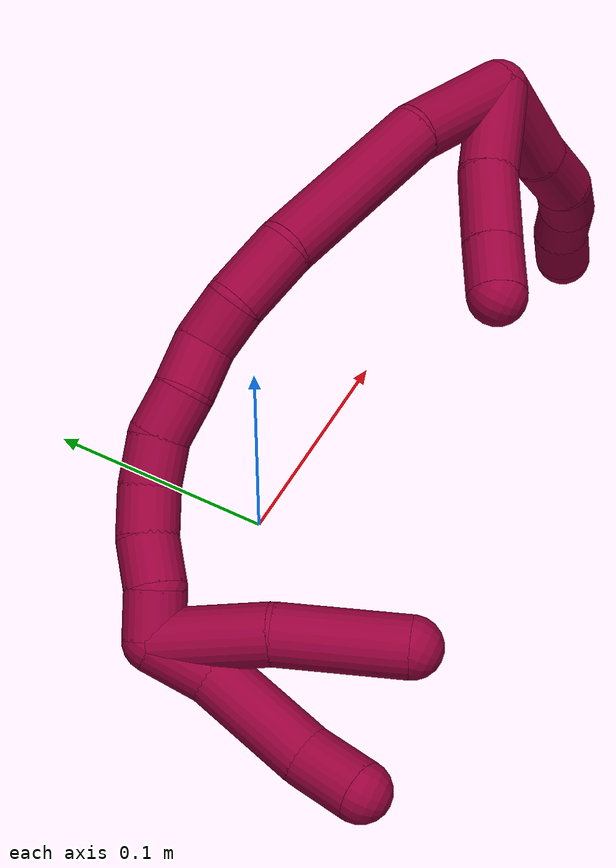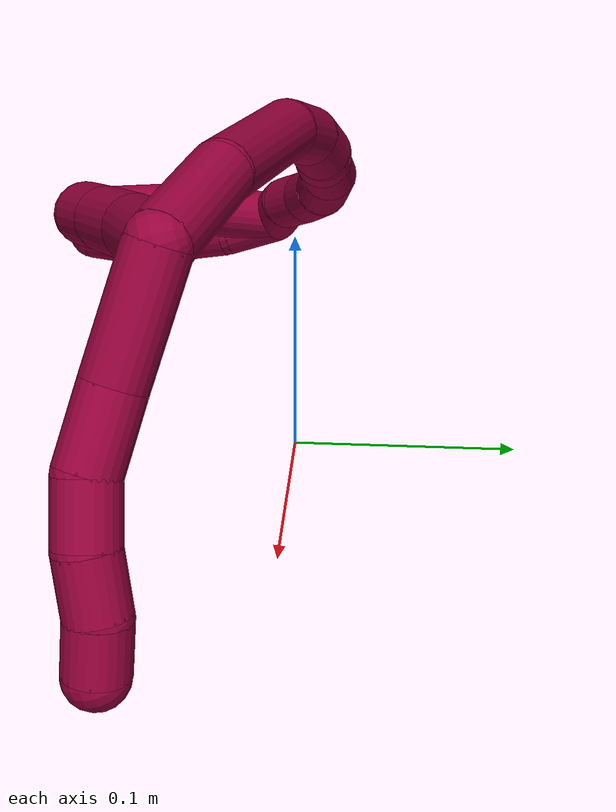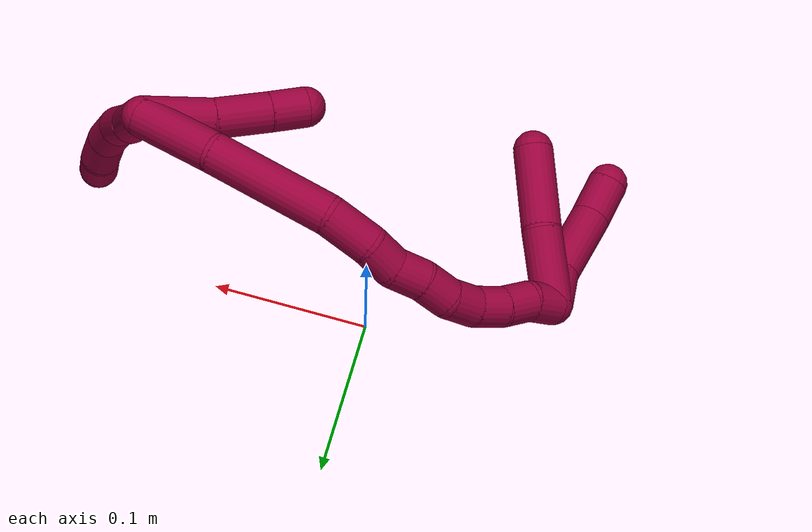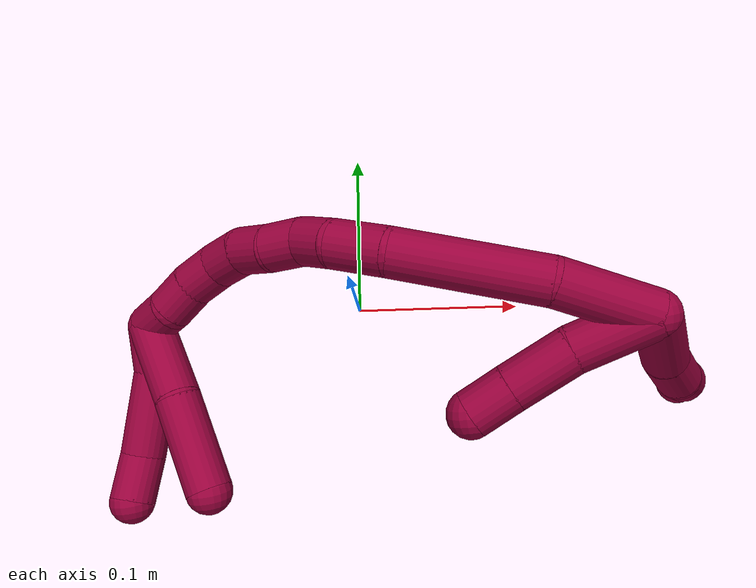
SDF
<sdf version="1.7">
 <world name="default">
  <model name="8">
   <static>0</static>
   <link name="8">
    <collision name="collision-cylinder-e_1_2_8">
     <pose>-0.004784 0.019996 -0.013934 -2.1794 -0.193842 0.368287</pose>
     <geometry><cylinder><radius>0.0125</radius><length>0.049674</length></cylinder></geometry>
     <surface>
      <friction><ode><mu>1.16</mu><mu2>1.16</mu2><slip1>0</slip1><slip2>0</slip2></ode></friction>
      <contact><ode><kp>1e+06</kp><kd>1</kd><max_vel>0</max_vel><min_depth>0.001</min_depth></ode></contact>
     </surface>
    </collision>
    <visual name="visual-cylinder-e_1_2_8">
     <pose>-0.004784 0.019996 -0.013934 -2.1794 -0.193842 0.368287</pose>
     <geometry><cylinder><radius>0.0125</radius><length>0.049674</length></cylinder></geometry>
     <material><ambient>0.584314 0 0.227451 1</ambient></material>
    </visual>
    <collision name="collision-cylinder-e_2_8_9">
     <pose>-0.010461 0.053066 -0.035987 -2.1265 -0.057895 0.104037</pose>
     <geometry><cylinder><radius>0.0125</radius><length>0.030831</length></cylinder></geometry>
     <surface>
      <friction><ode><mu>1.16</mu><mu2>1.16</mu2><slip1>0</slip1><slip2>0</slip2></ode></friction>
      <contact><ode><kp>1e+06</kp><kd>1</kd><max_vel>0</max_vel><min_depth>0.001</min_depth></ode></contact>
     </surface>
    </collision>
    <visual name="visual-cylinder-e_2_8_9">
     <pose>-0.010461 0.053066 -0.035987 -2.1265 -0.057895 0.104037</pose>
     <geometry><cylinder><radius>0.0125</radius><length>0.030831</length></cylinder></geometry>
     <material><ambient>0.584314 0 0.227451 1</ambient></material>
    </visual>
    <collision name="collision-cylinder-e_3_9_10">
     <pose>-0.013219 0.077805 -0.047452 -1.85022 -0.152614 0.202264</pose>
     <geometry><cylinder><radius>0.0125</radius><length>0.024557</length></cylinder></geometry>
     <surface>
      <friction><ode><mu>1.16</mu><mu2>1.16</mu2><slip1>0</slip1><slip2>0</slip2></ode></friction>
      <contact><ode><kp>1e+06</kp><kd>1</kd><max_vel>0</max_vel><min_depth>0.001</min_depth></ode></contact>
     </surface>
    </collision>
    <visual name="visual-cylinder-e_3_9_10">
     <pose>-0.013219 0.077805 -0.047452 -1.85022 -0.152614 0.202264</pose>
     <geometry><cylinder><radius>0.0125</radius><length>0.024557</length></cylinder></geometry>
     <material><ambient>0.584314 0 0.227451 1</ambient></material>
    </visual>
    <collision name="collision-cylinder-e_4_10_11">
     <pose>-0.018724 0.100796 -0.052479 -1.71796 -0.30764 0.355648</pose>
     <geometry><cylinder><radius>0.0125</radius><length>0.024028</length></cylinder></geometry>
     <surface>
      <friction><ode><mu>1.16</mu><mu2>1.16</mu2><slip1>0</slip1><slip2>0</slip2></ode></friction>
      <contact><ode><kp>1e+06</kp><kd>1</kd><max_vel>0</max_vel><min_depth>0.001</min_depth></ode></contact>
     </surface>
    </collision>
    <visual name="visual-cylinder-e_4_10_11">
     <pose>-0.018724 0.100796 -0.052479 -1.71796 -0.30764 0.355648</pose>
     <geometry><cylinder><radius>0.0125</radius><length>0.024028</length></cylinder></geometry>
     <material><ambient>0.584314 0 0.227451 1</ambient></material>
    </visual>
    <collision name="collision-cylinder-e_5_11_6">
     <pose>-0.026198 0.12117 -0.057725 -1.94633 -0.375653 0.544603</pose>
     <geometry><cylinder><radius>0.0125</radius><length>0.02091</length></cylinder></geometry>
     <surface>
      <friction><ode><mu>1.16</mu><mu2>1.16</mu2><slip1>0</slip1><slip2>0</slip2></ode></friction>
      <contact><ode><kp>1e+06</kp><kd>1</kd><max_vel>0</max_vel><min_depth>0.001</min_depth></ode></contact>
     </surface>
    </collision>
    <visual name="visual-cylinder-e_5_11_6">
     <pose>-0.026198 0.12117 -0.057725 -1.94633 -0.375653 0.544603</pose>
     <geometry><cylinder><radius>0.0125</radius><length>0.02091</length></cylinder></geometry>
     <material><ambient>0.584314 0 0.227451 1</ambient></material>
    </visual>
    <collision name="collision-cylinder-e_1_2_12">
     <pose>-0.018583 -0.008623 -0.006159 2.19102 -1.05254 -1.69166</pose>
     <geometry><cylinder><radius>0.0125</radius><length>0.042785</length></cylinder></geometry>
     <surface>
      <friction><ode><mu>1.16</mu><mu2>1.16</mu2><slip1>0</slip1><slip2>0</slip2></ode></friction>
      <contact><ode><kp>1e+06</kp><kd>1</kd><max_vel>0</max_vel><min_depth>0.001</min_depth></ode></contact>
     </surface>
    </collision>
    <visual name="visual-cylinder-e_1_2_12">
     <pose>-0.018583 -0.008623 -0.006159 2.19102 -1.05254 -1.69166</pose>
     <geometry><cylinder><radius>0.0125</radius><length>0.042785</length></cylinder></geometry>
     <material><ambient>0.584314 0 0.227451 1</ambient></material>
    </visual>
    <collision name="collision-cylinder-e_2_12_13">
     <pose>-0.050897 -0.024313 -0.019639 2.37389 -0.933064 -1.7897</pose>
     <geometry><cylinder><radius>0.0125</radius><length>0.034178</length></cylinder></geometry>
     <surface>
      <friction><ode><mu>1.16</mu><mu2>1.16</mu2><slip1>0</slip1><slip2>0</slip2></ode></friction>
      <contact><ode><kp>1e+06</kp><kd>1</kd><max_vel>0</max_vel><min_depth>0.001</min_depth></ode></contact>
     </surface>
    </collision>
    <visual name="visual-cylinder-e_2_12_13">
     <pose>-0.050897 -0.024313 -0.019639 2.37389 -0.933064 -1.7897</pose>
     <geometry><cylinder><radius>0.0125</radius><length>0.034178</length></cylinder></geometry>
     <material><ambient>0.584314 0 0.227451 1</ambient></material>
    </visual>
    <collision name="collision-cylinder-e_3_13_5">
     <pose>-0.073754 -0.036129 -0.032137 2.39915 -0.914743 -1.80325</pose>
     <geometry><cylinder><radius>0.0125</radius><length>0.023037</length></cylinder></geometry>
     <surface>
      <friction><ode><mu>1.16</mu><mu2>1.16</mu2><slip1>0</slip1><slip2>0</slip2></ode></friction>
      <contact><ode><kp>1e+06</kp><kd>1</kd><max_vel>0</max_vel><min_depth>0.001</min_depth></ode></contact>
     </surface>
    </collision>
    <visual name="visual-cylinder-e_3_13_5">
     <pose>-0.073754 -0.036129 -0.032137 2.39915 -0.914743 -1.80325</pose>
     <geometry><cylinder><radius>0.0125</radius><length>0.023037</length></cylinder></geometry>
     <material><ambient>0.584314 0 0.227451 1</ambient></material>
    </visual>
    <collision name="collision-cylinder-e_1_2_14">
     <pose>-0.018882 -0.01412 0.011017 0.908235 -0.811817 -0.413586</pose>
     <geometry><cylinder><radius>0.0125</radius><length>0.052049</length></cylinder></geometry>
     <surface>
      <friction><ode><mu>1.16</mu><mu2>1.16</mu2><slip1>0</slip1><slip2>0</slip2></ode></friction>
      <contact><ode><kp>1e+06</kp><kd>1</kd><max_vel>0</max_vel><min_depth>0.001</min_depth></ode></contact>
     </surface>
    </collision>
    <visual name="visual-cylinder-e_1_2_14">
     <pose>-0.018882 -0.01412 0.011017 0.908235 -0.811817 -0.413586</pose>
     <geometry><cylinder><radius>0.0125</radius><length>0.052049</length></cylinder></geometry>
     <material><ambient>0.584314 0 0.227451 1</ambient></material>
    </visual>
    <collision name="collision-cylinder-e_2_14_15">
     <pose>-0.071766 -0.043129 0.033734 0.904737 -1.06266 -0.556414</pose>
     <geometry><cylinder><radius>0.0125</radius><length>0.07784</length></cylinder></geometry>
     <surface>
      <friction><ode><mu>1.16</mu><mu2>1.16</mu2><slip1>0</slip1><slip2>0</slip2></ode></friction>
      <contact><ode><kp>1e+06</kp><kd>1</kd><max_vel>0</max_vel><min_depth>0.001</min_depth></ode></contact>
     </surface>
    </collision>
    <visual name="visual-cylinder-e_2_14_15">
     <pose>-0.071766 -0.043129 0.033734 0.904737 -1.06266 -0.556414</pose>
     <geometry><cylinder><radius>0.0125</radius><length>0.07784</length></cylinder></geometry>
     <material><ambient>0.584314 0 0.227451 1</ambient></material>
    </visual>
    <collision name="collision-cylinder-e_3_15_16">
     <pose>-0.120024 -0.059861 0.049073 0.468919 -1.29214 -0.356381</pose>
     <geometry><cylinder><radius>0.0125</radius><length>0.029655</length></cylinder></geometry>
     <surface>
      <friction><ode><mu>1.16</mu><mu2>1.16</mu2><slip1>0</slip1><slip2>0</slip2></ode></friction>
      <contact><ode><kp>1e+06</kp><kd>1</kd><max_vel>0</max_vel><min_depth>0.001</min_depth></ode></contact>
     </surface>
    </collision>
    <visual name="visual-cylinder-e_3_15_16">
     <pose>-0.120024 -0.059861 0.049073 0.468919 -1.29214 -0.356381</pose>
     <geometry><cylinder><radius>0.0125</radius><length>0.029655</length></cylinder></geometry>
     <material><ambient>0.584314 0 0.227451 1</ambient></material>
    </visual>
    <collision name="collision-cylinder-e_4_16_17">
     <pose>-0.14406 -0.060249 0.054296 -0.742825 -1.35431 0.606926</pose>
     <geometry><cylinder><radius>0.0125</radius><length>0.020029</length></cylinder></geometry>
     <surface>
      <friction><ode><mu>1.16</mu><mu2>1.16</mu2><slip1>0</slip1><slip2>0</slip2></ode></friction>
      <contact><ode><kp>1e+06</kp><kd>1</kd><max_vel>0</max_vel><min_depth>0.001</min_depth></ode></contact>
     </surface>
    </collision>
    <visual name="visual-cylinder-e_4_16_17">
     <pose>-0.14406 -0.060249 0.054296 -0.742825 -1.35431 0.606926</pose>
     <geometry><cylinder><radius>0.0125</radius><length>0.020029</length></cylinder></geometry>
     <material><ambient>0.584314 0 0.227451 1</ambient></material>
    </visual>
    <collision name="collision-cylinder-e_5_17_18">
     <pose>-0.163877 -0.059929 0.05528 2.05707 -1.44366 -1.9412</pose>
     <geometry><cylinder><radius>0.0125</radius><length>0.020237</length></cylinder></geometry>
     <surface>
      <friction><ode><mu>1.16</mu><mu2>1.16</mu2><slip1>0</slip1><slip2>0</slip2></ode></friction>
      <contact><ode><kp>1e+06</kp><kd>1</kd><max_vel>0</max_vel><min_depth>0.001</min_depth></ode></contact>
     </surface>
    </collision>
    <visual name="visual-cylinder-e_5_17_18">
     <pose>-0.163877 -0.059929 0.05528 2.05707 -1.44366 -1.9412</pose>
     <geometry><cylinder><radius>0.0125</radius><length>0.020237</length></cylinder></geometry>
     <material><ambient>0.584314 0 0.227451 1</ambient></material>
    </visual>
    <collision name="collision-cylinder-e_6_18_19">
     <pose>-0.1839 -0.06031 0.054972 -1.20171 -1.4901 1.12751</pose>
     <geometry><cylinder><radius>0.0125</radius><length>0.020037</length></cylinder></geometry>
     <surface>
      <friction><ode><mu>1.16</mu><mu2>1.16</mu2><slip1>0</slip1><slip2>0</slip2></ode></friction>
      <contact><ode><kp>1e+06</kp><kd>1</kd><max_vel>0</max_vel><min_depth>0.001</min_depth></ode></contact>
     </surface>
    </collision>
    <visual name="visual-cylinder-e_6_18_19">
     <pose>-0.1839 -0.06031 0.054972 -1.20171 -1.4901 1.12751</pose>
     <geometry><cylinder><radius>0.0125</radius><length>0.020037</length></cylinder></geometry>
     <material><ambient>0.584314 0 0.227451 1</ambient></material>
    </visual>
    <collision name="collision-cylinder-e_7_19_20">
     <pose>-0.203532 -0.059064 0.05243 -2.96965 -1.281 2.91135</pose>
     <geometry><cylinder><radius>0.0125</radius><length>0.02013</length></cylinder></geometry>
     <surface>
      <friction><ode><mu>1.16</mu><mu2>1.16</mu2><slip1>0</slip1><slip2>0</slip2></ode></friction>
      <contact><ode><kp>1e+06</kp><kd>1</kd><max_vel>0</max_vel><min_depth>0.001</min_depth></ode></contact>
     </surface>
    </collision>
    <visual name="visual-cylinder-e_7_19_20">
     <pose>-0.203532 -0.059064 0.05243 -2.96965 -1.281 2.91135</pose>
     <geometry><cylinder><radius>0.0125</radius><length>0.02013</length></cylinder></geometry>
     <material><ambient>0.584314 0 0.227451 1</ambient></material>
    </visual>
    <collision name="collision-cylinder-e_8_20_21">
     <pose>-0.222058 -0.06028 0.045329 2.76082 -1.09322 -2.52811</pose>
     <geometry><cylinder><radius>0.0125</radius><length>0.020001</length></cylinder></geometry>
     <surface>
      <friction><ode><mu>1.16</mu><mu2>1.16</mu2><slip1>0</slip1><slip2>0</slip2></ode></friction>
      <contact><ode><kp>1e+06</kp><kd>1</kd><max_vel>0</max_vel><min_depth>0.001</min_depth></ode></contact>
     </surface>
    </collision>
    <visual name="visual-cylinder-e_8_20_21">
     <pose>-0.222058 -0.06028 0.045329 2.76082 -1.09322 -2.52811</pose>
     <geometry><cylinder><radius>0.0125</radius><length>0.020001</length></cylinder></geometry>
     <material><ambient>0.584314 0 0.227451 1</ambient></material>
    </visual>
    <collision name="collision-cylinder-e_9_21_22">
     <pose>-0.238757 -0.06406 0.035169 2.80354 -0.896616 -2.45967</pose>
     <geometry><cylinder><radius>0.0125</radius><length>0.020012</length></cylinder></geometry>
     <surface>
      <friction><ode><mu>1.16</mu><mu2>1.16</mu2><slip1>0</slip1><slip2>0</slip2></ode></friction>
      <contact><ode><kp>1e+06</kp><kd>1</kd><max_vel>0</max_vel><min_depth>0.001</min_depth></ode></contact>
     </surface>
    </collision>
    <visual name="visual-cylinder-e_9_21_22">
     <pose>-0.238757 -0.06406 0.035169 2.80354 -0.896616 -2.45967</pose>
     <geometry><cylinder><radius>0.0125</radius><length>0.020012</length></cylinder></geometry>
     <material><ambient>0.584314 0 0.227451 1</ambient></material>
    </visual>
    <collision name="collision-cylinder-e_10_22_1">
     <pose>-0.255628 -0.065761 0.025035 -3.05444 -1.13131 3.00444</pose>
     <geometry><cylinder><radius>0.0125</radius><length>0.020011</length></cylinder></geometry>
     <surface>
      <friction><ode><mu>1.16</mu><mu2>1.16</mu2><slip1>0</slip1><slip2>0</slip2></ode></friction>
      <contact><ode><kp>1e+06</kp><kd>1</kd><max_vel>0</max_vel><min_depth>0.001</min_depth></ode></contact>
     </surface>
    </collision>
    <visual name="visual-cylinder-e_10_22_1">
     <pose>-0.255628 -0.065761 0.025035 -3.05444 -1.13131 3.00444</pose>
     <geometry><cylinder><radius>0.0125</radius><length>0.020011</length></cylinder></geometry>
     <material><ambient>0.584314 0 0.227451 1</ambient></material>
    </visual>
    <collision name="collision-cylinder-e_1_1_23">
     <pose>-0.265059 -0.065507 0.007953 3.13252 -0.029286 -2.54046</pose>
     <geometry><cylinder><radius>0.0125</radius><length>0.025695</length></cylinder></geometry>
     <surface>
      <friction><ode><mu>1.16</mu><mu2>1.16</mu2><slip1>0</slip1><slip2>0</slip2></ode></friction>
      <contact><ode><kp>1e+06</kp><kd>1</kd><max_vel>0</max_vel><min_depth>0.001</min_depth></ode></contact>
     </surface>
    </collision>
    <visual name="visual-cylinder-e_1_1_23">
     <pose>-0.265059 -0.065507 0.007953 3.13252 -0.029286 -2.54046</pose>
     <geometry><cylinder><radius>0.0125</radius><length>0.025695</length></cylinder></geometry>
     <material><ambient>0.584314 0 0.227451 1</ambient></material>
    </visual>
    <collision name="collision-cylinder-e_2_23_24">
     <pose>-0.270897 -0.070685 -0.027855 2.92468 -0.228203 -1.62193</pose>
     <geometry><cylinder><radius>0.0125</radius><length>0.048285</length></cylinder></geometry>
     <surface>
      <friction><ode><mu>1.16</mu><mu2>1.16</mu2><slip1>0</slip1><slip2>0</slip2></ode></friction>
      <contact><ode><kp>1e+06</kp><kd>1</kd><max_vel>0</max_vel><min_depth>0.001</min_depth></ode></contact>
     </surface>
    </collision>
    <visual name="visual-cylinder-e_2_23_24">
     <pose>-0.270897 -0.070685 -0.027855 2.92468 -0.228203 -1.62193</pose>
     <geometry><cylinder><radius>0.0125</radius><length>0.048285</length></cylinder></geometry>
     <material><ambient>0.584314 0 0.227451 1</ambient></material>
    </visual>
    <collision name="collision-cylinder-e_3_24_4">
     <pose>-0.277304 -0.081348 -0.062524 2.69518 -0.072697 -0.31771</pose>
     <geometry><cylinder><radius>0.0125</radius><length>0.02602</length></cylinder></geometry>
     <surface>
      <friction><ode><mu>1.16</mu><mu2>1.16</mu2><slip1>0</slip1><slip2>0</slip2></ode></friction>
      <contact><ode><kp>1e+06</kp><kd>1</kd><max_vel>0</max_vel><min_depth>0.001</min_depth></ode></contact>
     </surface>
    </collision>
    <visual name="visual-cylinder-e_3_24_4">
     <pose>-0.277304 -0.081348 -0.062524 2.69518 -0.072697 -0.31771</pose>
     <geometry><cylinder><radius>0.0125</radius><length>0.02602</length></cylinder></geometry>
     <material><ambient>0.584314 0 0.227451 1</ambient></material>
    </visual>
    <collision name="collision-cylinder-e_1_1_25">
     <pose>-0.253027 -0.070792 0.001079 2.87417 0.518229 2.20241</pose>
     <geometry><cylinder><radius>0.0125</radius><length>0.047063</length></cylinder></geometry>
     <surface>
      <friction><ode><mu>1.16</mu><mu2>1.16</mu2><slip1>0</slip1><slip2>0</slip2></ode></friction>
      <contact><ode><kp>1e+06</kp><kd>1</kd><max_vel>0</max_vel><min_depth>0.001</min_depth></ode></contact>
     </surface>
    </collision>
    <visual name="visual-cylinder-e_1_1_25">
     <pose>-0.253027 -0.070792 0.001079 2.87417 0.518229 2.20241</pose>
     <geometry><cylinder><radius>0.0125</radius><length>0.047063</length></cylinder></geometry>
     <material><ambient>0.584314 0 0.227451 1</ambient></material>
    </visual>
    <collision name="collision-cylinder-e_2_25_3">
     <pose>-0.231604 -0.079644 -0.042994 3.0009 0.377905 2.43554</pose>
     <geometry><cylinder><radius>0.0125</radius><length>0.052937</length></cylinder></geometry>
     <surface>
      <friction><ode><mu>1.16</mu><mu2>1.16</mu2><slip1>0</slip1><slip2>0</slip2></ode></friction>
      <contact><ode><kp>1e+06</kp><kd>1</kd><max_vel>0</max_vel><min_depth>0.001</min_depth></ode></contact>
     </surface>
    </collision>
    <visual name="visual-cylinder-e_2_25_3">
     <pose>-0.231604 -0.079644 -0.042994 3.0009 0.377905 2.43554</pose>
     <geometry><cylinder><radius>0.0125</radius><length>0.052937</length></cylinder></geometry>
     <material><ambient>0.584314 0 0.227451 1</ambient></material>
    </visual>
    <collision name="collision-sphere-3">
     <pose>-0.221838 -0.083093 -0.067352 0 -0 0</pose>
     <geometry><sphere><radius>0.0125</radius></sphere></geometry>
     <surface>
      <friction><ode><mu>1.16</mu><mu2>1.16</mu2><slip1>0</slip1><slip2>0</slip2></ode></friction>
      <contact><ode><kp>1e+06</kp><kd>1</kd><max_vel>0</max_vel><min_depth>0.001</min_depth></ode></contact>
     </surface>
    </collision>
    <visual name="visual-sphere-3">
     <pose>-0.221838 -0.083093 -0.067352 0 -0 0</pose>
     <geometry><sphere><radius>0.0125</radius></sphere></geometry>
     <material><ambient>0.584314 0 0.227451 1</ambient></material>
    </visual>
    <collision name="collision-sphere-25">
     <pose>-0.241371 -0.076194 -0.018636 0 -0 0</pose>
     <geometry><sphere><radius>0.0125</radius></sphere></geometry>
     <surface>
      <friction><ode><mu>1.16</mu><mu2>1.16</mu2><slip1>0</slip1><slip2>0</slip2></ode></friction>
      <contact><ode><kp>1e+06</kp><kd>1</kd><max_vel>0</max_vel><min_depth>0.001</min_depth></ode></contact>
     </surface>
    </collision>
    <visual name="visual-sphere-25">
     <pose>-0.241371 -0.076194 -0.018636 0 -0 0</pose>
     <geometry><sphere><radius>0.0125</radius></sphere></geometry>
     <material><ambient>0.584314 0 0.227451 1</ambient></material>
    </visual>
    <collision name="collision-sphere-4">
     <pose>-0.278249 -0.08695 -0.074228 0 -0 0</pose>
     <geometry><sphere><radius>0.0125</radius></sphere></geometry>
     <surface>
      <friction><ode><mu>1.16</mu><mu2>1.16</mu2><slip1>0</slip1><slip2>0</slip2></ode></friction>
      <contact><ode><kp>1e+06</kp><kd>1</kd><max_vel>0</max_vel><min_depth>0.001</min_depth></ode></contact>
     </surface>
    </collision>
    <visual name="visual-sphere-4">
     <pose>-0.278249 -0.08695 -0.074228 0 -0 0</pose>
     <geometry><sphere><radius>0.0125</radius></sphere></geometry>
     <material><ambient>0.584314 0 0.227451 1</ambient></material>
    </visual>
    <collision name="collision-sphere-24">
     <pose>-0.276359 -0.075746 -0.05082 0 -0 0</pose>
     <geometry><sphere><radius>0.0125</radius></sphere></geometry>
     <surface>
      <friction><ode><mu>1.16</mu><mu2>1.16</mu2><slip1>0</slip1><slip2>0</slip2></ode></friction>
      <contact><ode><kp>1e+06</kp><kd>1</kd><max_vel>0</max_vel><min_depth>0.001</min_depth></ode></contact>
     </surface>
    </collision>
    <visual name="visual-sphere-24">
     <pose>-0.276359 -0.075746 -0.05082 0 -0 0</pose>
     <geometry><sphere><radius>0.0125</radius></sphere></geometry>
     <material><ambient>0.584314 0 0.227451 1</ambient></material>
    </visual>
    <collision name="collision-sphere-23">
     <pose>-0.265435 -0.065624 -0.004889 0 -0 0</pose>
     <geometry><sphere><radius>0.0125</radius></sphere></geometry>
     <surface>
      <friction><ode><mu>1.16</mu><mu2>1.16</mu2><slip1>0</slip1><slip2>0</slip2></ode></friction>
      <contact><ode><kp>1e+06</kp><kd>1</kd><max_vel>0</max_vel><min_depth>0.001</min_depth></ode></contact>
     </surface>
    </collision>
    <visual name="visual-sphere-23">
     <pose>-0.265435 -0.065624 -0.004889 0 -0 0</pose>
     <geometry><sphere><radius>0.0125</radius></sphere></geometry>
     <material><ambient>0.584314 0 0.227451 1</ambient></material>
    </visual>
    <collision name="collision-sphere-1">
     <pose>-0.264683 -0.065391 0.020794 0 -0 0</pose>
     <geometry><sphere><radius>0.0125</radius></sphere></geometry>
     <surface>
      <friction><ode><mu>1.16</mu><mu2>1.16</mu2><slip1>0</slip1><slip2>0</slip2></ode></friction>
      <contact><ode><kp>1e+06</kp><kd>1</kd><max_vel>0</max_vel><min_depth>0.001</min_depth></ode></contact>
     </surface>
    </collision>
    <visual name="visual-sphere-1">
     <pose>-0.264683 -0.065391 0.020794 0 -0 0</pose>
     <geometry><sphere><radius>0.0125</radius></sphere></geometry>
     <material><ambient>0.584314 0 0.227451 1</ambient></material>
    </visual>
    <collision name="collision-sphere-22">
     <pose>-0.246574 -0.066132 0.029276 0 -0 0</pose>
     <geometry><sphere><radius>0.0125</radius></sphere></geometry>
     <surface>
      <friction><ode><mu>1.16</mu><mu2>1.16</mu2><slip1>0</slip1><slip2>0</slip2></ode></friction>
      <contact><ode><kp>1e+06</kp><kd>1</kd><max_vel>0</max_vel><min_depth>0.001</min_depth></ode></contact>
     </surface>
    </collision>
    <visual name="visual-sphere-22">
     <pose>-0.246574 -0.066132 0.029276 0 -0 0</pose>
     <geometry><sphere><radius>0.0125</radius></sphere></geometry>
     <material><ambient>0.584314 0 0.227451 1</ambient></material>
    </visual>
    <collision name="collision-sphere-21">
     <pose>-0.23094 -0.061989 0.041062 0 -0 0</pose>
     <geometry><sphere><radius>0.0125</radius></sphere></geometry>
     <surface>
      <friction><ode><mu>1.16</mu><mu2>1.16</mu2><slip1>0</slip1><slip2>0</slip2></ode></friction>
      <contact><ode><kp>1e+06</kp><kd>1</kd><max_vel>0</max_vel><min_depth>0.001</min_depth></ode></contact>
     </surface>
    </collision>
    <visual name="visual-sphere-21">
     <pose>-0.23094 -0.061989 0.041062 0 -0 0</pose>
     <geometry><sphere><radius>0.0125</radius></sphere></geometry>
     <material><ambient>0.584314 0 0.227451 1</ambient></material>
    </visual>
    <collision name="collision-sphere-6">
     <pose>-0.030033 0.130218 -0.061292 0 -0 0</pose>
     <geometry><sphere><radius>0.0125</radius></sphere></geometry>
     <surface>
      <friction><ode><mu>1.16</mu><mu2>1.16</mu2><slip1>0</slip1><slip2>0</slip2></ode></friction>
      <contact><ode><kp>1e+06</kp><kd>1</kd><max_vel>0</max_vel><min_depth>0.001</min_depth></ode></contact>
     </surface>
    </collision>
    <visual name="visual-sphere-6">
     <pose>-0.030033 0.130218 -0.061292 0 -0 0</pose>
     <geometry><sphere><radius>0.0125</radius></sphere></geometry>
     <material><ambient>0.584314 0 0.227451 1</ambient></material>
    </visual>
    <collision name="collision-sphere-11">
     <pose>-0.022362 0.112122 -0.054158 0 -0 0</pose>
     <geometry><sphere><radius>0.0125</radius></sphere></geometry>
     <surface>
      <friction><ode><mu>1.16</mu><mu2>1.16</mu2><slip1>0</slip1><slip2>0</slip2></ode></friction>
      <contact><ode><kp>1e+06</kp><kd>1</kd><max_vel>0</max_vel><min_depth>0.001</min_depth></ode></contact>
     </surface>
    </collision>
    <visual name="visual-sphere-11">
     <pose>-0.022362 0.112122 -0.054158 0 -0 0</pose>
     <geometry><sphere><radius>0.0125</radius></sphere></geometry>
     <material><ambient>0.584314 0 0.227451 1</ambient></material>
    </visual>
    <collision name="collision-sphere-10">
     <pose>-0.015086 0.08947 -0.0508 0 -0 0</pose>
     <geometry><sphere><radius>0.0125</radius></sphere></geometry>
     <surface>
      <friction><ode><mu>1.16</mu><mu2>1.16</mu2><slip1>0</slip1><slip2>0</slip2></ode></friction>
      <contact><ode><kp>1e+06</kp><kd>1</kd><max_vel>0</max_vel><min_depth>0.001</min_depth></ode></contact>
     </surface>
    </collision>
    <visual name="visual-sphere-10">
     <pose>-0.015086 0.08947 -0.0508 0 -0 0</pose>
     <geometry><sphere><radius>0.0125</radius></sphere></geometry>
     <material><ambient>0.584314 0 0.227451 1</ambient></material>
    </visual>
    <collision name="collision-sphere-9">
     <pose>-0.011353 0.066139 -0.044105 0 -0 0</pose>
     <geometry><sphere><radius>0.0125</radius></sphere></geometry>
     <surface>
      <friction><ode><mu>1.16</mu><mu2>1.16</mu2><slip1>0</slip1><slip2>0</slip2></ode></friction>
      <contact><ode><kp>1e+06</kp><kd>1</kd><max_vel>0</max_vel><min_depth>0.001</min_depth></ode></contact>
     </surface>
    </collision>
    <visual name="visual-sphere-9">
     <pose>-0.011353 0.066139 -0.044105 0 -0 0</pose>
     <geometry><sphere><radius>0.0125</radius></sphere></geometry>
     <material><ambient>0.584314 0 0.227451 1</ambient></material>
    </visual>
    <collision name="collision-sphere-2">
     <geometry><sphere><radius>0.0125</radius></sphere></geometry>
     <surface>
      <friction><ode><mu>1.16</mu><mu2>1.16</mu2><slip1>0</slip1><slip2>0</slip2></ode></friction>
      <contact><ode><kp>1e+06</kp><kd>1</kd><max_vel>0</max_vel><min_depth>0.001</min_depth></ode></contact>
     </surface>
    </collision>
    <visual name="visual-sphere-2">
     <geometry><sphere><radius>0.0125</radius></sphere></geometry>
     <material><ambient>0.584314 0 0.227451 1</ambient></material>
    </visual>
    <collision name="collision-sphere-19">
     <pose>-0.193886 -0.059556 0.055264 0 -0 0</pose>
     <geometry><sphere><radius>0.0125</radius></sphere></geometry>
     <surface>
      <friction><ode><mu>1.16</mu><mu2>1.16</mu2><slip1>0</slip1><slip2>0</slip2></ode></friction>
      <contact><ode><kp>1e+06</kp><kd>1</kd><max_vel>0</max_vel><min_depth>0.001</min_depth></ode></contact>
     </surface>
    </collision>
    <visual name="visual-sphere-19">
     <pose>-0.193886 -0.059556 0.055264 0 -0 0</pose>
     <geometry><sphere><radius>0.0125</radius></sphere></geometry>
     <material><ambient>0.584314 0 0.227451 1</ambient></material>
    </visual>
    <collision name="collision-sphere-8">
     <pose>-0.009569 0.039992 -0.027868 0 -0 0</pose>
     <geometry><sphere><radius>0.0125</radius></sphere></geometry>
     <surface>
      <friction><ode><mu>1.16</mu><mu2>1.16</mu2><slip1>0</slip1><slip2>0</slip2></ode></friction>
      <contact><ode><kp>1e+06</kp><kd>1</kd><max_vel>0</max_vel><min_depth>0.001</min_depth></ode></contact>
     </surface>
    </collision>
    <visual name="visual-sphere-8">
     <pose>-0.009569 0.039992 -0.027868 0 -0 0</pose>
     <geometry><sphere><radius>0.0125</radius></sphere></geometry>
     <material><ambient>0.584314 0 0.227451 1</ambient></material>
    </visual>
    <collision name="collision-sphere-12">
     <pose>-0.037167 -0.017247 -0.012318 0 -0 0</pose>
     <geometry><sphere><radius>0.0125</radius></sphere></geometry>
     <surface>
      <friction><ode><mu>1.16</mu><mu2>1.16</mu2><slip1>0</slip1><slip2>0</slip2></ode></friction>
      <contact><ode><kp>1e+06</kp><kd>1</kd><max_vel>0</max_vel><min_depth>0.001</min_depth></ode></contact>
     </surface>
    </collision>
    <visual name="visual-sphere-12">
     <pose>-0.037167 -0.017247 -0.012318 0 -0 0</pose>
     <geometry><sphere><radius>0.0125</radius></sphere></geometry>
     <material><ambient>0.584314 0 0.227451 1</ambient></material>
    </visual>
    <collision name="collision-sphere-13">
     <pose>-0.064627 -0.031379 -0.02696 0 -0 0</pose>
     <geometry><sphere><radius>0.0125</radius></sphere></geometry>
     <surface>
      <friction><ode><mu>1.16</mu><mu2>1.16</mu2><slip1>0</slip1><slip2>0</slip2></ode></friction>
      <contact><ode><kp>1e+06</kp><kd>1</kd><max_vel>0</max_vel><min_depth>0.001</min_depth></ode></contact>
     </surface>
    </collision>
    <visual name="visual-sphere-13">
     <pose>-0.064627 -0.031379 -0.02696 0 -0 0</pose>
     <geometry><sphere><radius>0.0125</radius></sphere></geometry>
     <material><ambient>0.584314 0 0.227451 1</ambient></material>
    </visual>
    <collision name="collision-sphere-5">
     <pose>-0.082882 -0.040879 -0.037314 0 -0 0</pose>
     <geometry><sphere><radius>0.0125</radius></sphere></geometry>
     <surface>
      <friction><ode><mu>1.16</mu><mu2>1.16</mu2><slip1>0</slip1><slip2>0</slip2></ode></friction>
      <contact><ode><kp>1e+06</kp><kd>1</kd><max_vel>0</max_vel><min_depth>0.001</min_depth></ode></contact>
     </surface>
    </collision>
    <visual name="visual-sphere-5">
     <pose>-0.082882 -0.040879 -0.037314 0 -0 0</pose>
     <geometry><sphere><radius>0.0125</radius></sphere></geometry>
     <material><ambient>0.584314 0 0.227451 1</ambient></material>
    </visual>
    <collision name="collision-sphere-14">
     <pose>-0.037763 -0.02824 0.022034 0 -0 0</pose>
     <geometry><sphere><radius>0.0125</radius></sphere></geometry>
     <surface>
      <friction><ode><mu>1.16</mu><mu2>1.16</mu2><slip1>0</slip1><slip2>0</slip2></ode></friction>
      <contact><ode><kp>1e+06</kp><kd>1</kd><max_vel>0</max_vel><min_depth>0.001</min_depth></ode></contact>
     </surface>
    </collision>
    <visual name="visual-sphere-14">
     <pose>-0.037763 -0.02824 0.022034 0 -0 0</pose>
     <geometry><sphere><radius>0.0125</radius></sphere></geometry>
     <material><ambient>0.584314 0 0.227451 1</ambient></material>
    </visual>
    <collision name="collision-sphere-15">
     <pose>-0.105768 -0.058018 0.045435 0 -0 0</pose>
     <geometry><sphere><radius>0.0125</radius></sphere></geometry>
     <surface>
      <friction><ode><mu>1.16</mu><mu2>1.16</mu2><slip1>0</slip1><slip2>0</slip2></ode></friction>
      <contact><ode><kp>1e+06</kp><kd>1</kd><max_vel>0</max_vel><min_depth>0.001</min_depth></ode></contact>
     </surface>
    </collision>
    <visual name="visual-sphere-15">
     <pose>-0.105768 -0.058018 0.045435 0 -0 0</pose>
     <geometry><sphere><radius>0.0125</radius></sphere></geometry>
     <material><ambient>0.584314 0 0.227451 1</ambient></material>
    </visual>
    <collision name="collision-sphere-16">
     <pose>-0.134279 -0.061704 0.052711 0 -0 0</pose>
     <geometry><sphere><radius>0.0125</radius></sphere></geometry>
     <surface>
      <friction><ode><mu>1.16</mu><mu2>1.16</mu2><slip1>0</slip1><slip2>0</slip2></ode></friction>
      <contact><ode><kp>1e+06</kp><kd>1</kd><max_vel>0</max_vel><min_depth>0.001</min_depth></ode></contact>
     </surface>
    </collision>
    <visual name="visual-sphere-16">
     <pose>-0.134279 -0.061704 0.052711 0 -0 0</pose>
     <geometry><sphere><radius>0.0125</radius></sphere></geometry>
     <material><ambient>0.584314 0 0.227451 1</ambient></material>
    </visual>
    <collision name="collision-sphere-17">
     <pose>-0.153841 -0.058794 0.05588 0 -0 0</pose>
     <geometry><sphere><radius>0.0125</radius></sphere></geometry>
     <surface>
      <friction><ode><mu>1.16</mu><mu2>1.16</mu2><slip1>0</slip1><slip2>0</slip2></ode></friction>
      <contact><ode><kp>1e+06</kp><kd>1</kd><max_vel>0</max_vel><min_depth>0.001</min_depth></ode></contact>
     </surface>
    </collision>
    <visual name="visual-sphere-17">
     <pose>-0.153841 -0.058794 0.05588 0 -0 0</pose>
     <geometry><sphere><radius>0.0125</radius></sphere></geometry>
     <material><ambient>0.584314 0 0.227451 1</ambient></material>
    </visual>
    <collision name="collision-sphere-18">
     <pose>-0.173914 -0.061063 0.054681 0 -0 0</pose>
     <geometry><sphere><radius>0.0125</radius></sphere></geometry>
     <surface>
      <friction><ode><mu>1.16</mu><mu2>1.16</mu2><slip1>0</slip1><slip2>0</slip2></ode></friction>
      <contact><ode><kp>1e+06</kp><kd>1</kd><max_vel>0</max_vel><min_depth>0.001</min_depth></ode></contact>
     </surface>
    </collision>
    <visual name="visual-sphere-18">
     <pose>-0.173914 -0.061063 0.054681 0 -0 0</pose>
     <geometry><sphere><radius>0.0125</radius></sphere></geometry>
     <material><ambient>0.584314 0 0.227451 1</ambient></material>
    </visual>
    <collision name="collision-sphere-20">
     <pose>-0.213177 -0.058572 0.049596 0 -0 0</pose>
     <geometry><sphere><radius>0.0125</radius></sphere></geometry>
     <surface>
      <friction><ode><mu>1.16</mu><mu2>1.16</mu2><slip1>0</slip1><slip2>0</slip2></ode></friction>
      <contact><ode><kp>1e+06</kp><kd>1</kd><max_vel>0</max_vel><min_depth>0.001</min_depth></ode></contact>
     </surface>
    </collision>
    <visual name="visual-sphere-20">
     <pose>-0.213177 -0.058572 0.049596 0 -0 0</pose>
     <geometry><sphere><radius>0.0125</radius></sphere></geometry>
     <material><ambient>0.584314 0 0.227451 1</ambient></material>
    </visual>
    <inertial>
     <pose>-0.127784 -0.029047 -0.001298 0 -0 0</pose>
     <mass>0.75</mass>
     <inertia><ixx>-1.3e-05</ixx><ixy>0</ixy><ixz>0</ixz><iyy>6.8e-05</iyy><iyz>0</iyz><izz>6.8e-05</izz></inertia>
    </inertial>
   </link>
   <pose>0.148371 -0.034196 0.149684 -1.24278 -0.548128 -0.064823</pose>
  </model>
 </world>
</sdf>
